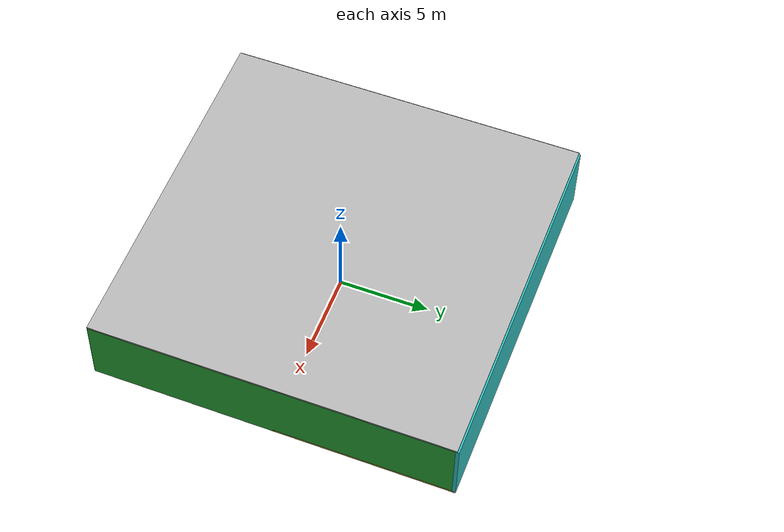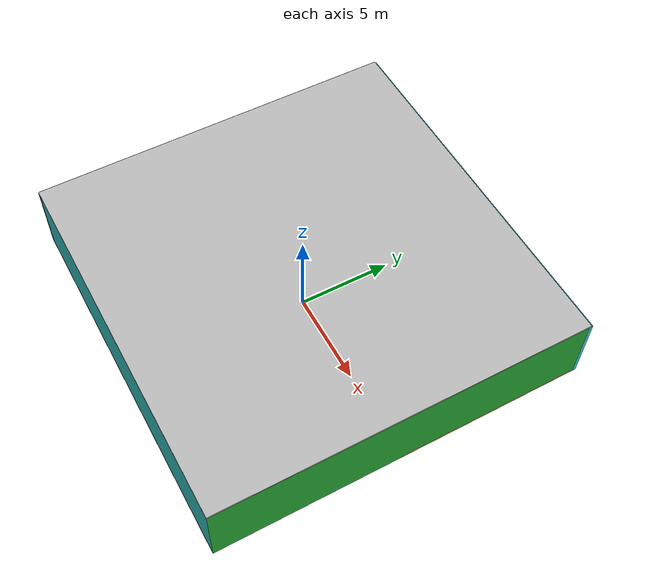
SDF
<sdf version="1.4">
 <world name="default">
  <physics type="ode">
   <max_step_size>0.001</max_step_size>
   <real_time_factor>1</real_time_factor>
   <real_time_update_rate>1000</real_time_update_rate>
   <gravity>0 0 -9.8</gravity>
  </physics>
  <scene><ambient>0.4 0.4 0.4 1</ambient><background>0.7 0.7 0.7 1</background><shadows>1</shadows></scene>
  <model name="Surrounding">
   <static>1</static>
   <link name="Ceiling">
    <collision name="Ceiling_Collision"><geometry><box><size>20 20 0.1</size></box></geometry></collision>
    <visual name="Ceiling_Visual">
     <geometry><box><size>20 20 0.1</size></box></geometry>
     <material>
      <script><uri>file://media/materials/scripts/gazebo.material</uri><name>Gazebo/LightOff</name></script>
     </material>
    </visual>
    <pose>0 0 4.05 0 0 0</pose>
   </link>
   <link name="Wall_South">
    <collision name="Wall_South_Collision">
     <geometry><box><size>20 0 4</size></box></geometry>
     <pose>0 0 2 0 -0 0</pose>
    </collision>
    <visual name="Wall_South_Visual">
     <pose>0 0 2 0 -0 0</pose>
     <geometry><box><size>20 0 4</size></box></geometry>
     <material>
      <script>
       <uri>file://media/materials/scripts/gazebo.material</uri>
       <name>Gazebo/TurquoiseGlowOutline</name>
      </script>
     </material>
    </visual>
    <velocity_decay><linear>0</linear><angular>0</angular></velocity_decay>
    <pose>0 -10 0 0 -0 0</pose>
   </link>
   <link name="Wall_East">
    <collision name="Wall_21_Collision">
     <geometry><box><size>20 0 4</size></box></geometry>
     <pose>0 0 2 0 -0 0</pose>
    </collision>
    <visual name="Wall_21_Visual">
     <pose>0 0 2 0 -0 0</pose>
     <geometry><box><size>20 0 4</size></box></geometry>
     <material>
      <script><uri>file://media/materials/scripts/gazebo.material</uri><name>Gazebo/Green</name></script>
     </material>
    </visual>
    <velocity_decay><linear>0</linear><angular>0</angular></velocity_decay>
    <pose>10 0 0 0 -0 1.5708</pose>
   </link>
   <link name="Wall_North">
    <collision name="Wall_22_Collision">
     <geometry><box><size>20 0.2 4</size></box></geometry>
     <pose>0 0 2 0 -0 0</pose>
    </collision>
    <visual name="Wall_22_Visual">
     <pose>0 0 2 0 -0 0</pose>
     <geometry><box><size>20 0.2 4</size></box></geometry>
     <material>
      <script>
       <uri>file://media/materials/scripts/gazebo.material</uri>
       <name>Gazebo/TurquoiseGlowOutline</name>
      </script>
     </material>
    </visual>
    <velocity_decay><linear>0</linear><angular>0</angular></velocity_decay>
    <pose>0 10 0 0 -0 0</pose>
   </link>
   <link name="Wall_West">
    <collision name="Wall_23_Collision">
     <geometry><box><size>20 0.2 4</size></box></geometry>
     <pose>0 0 2 0 -0 0</pose>
    </collision>
    <visual name="Wall_23_Visual">
     <pose>0 0 2 0 -0 0</pose>
     <geometry><box><size>20 0.2 4</size></box></geometry>
     <material>
      <script><uri>file://media/materials/scripts/gazebo.material</uri><name>Gazebo/Grey</name></script>
     </material>
    </visual>
    <velocity_decay><linear>0</linear><angular>0</angular></velocity_decay>
    <pose>-10 0 0 0 0 -1.5708</pose>
   </link>
   <link name="Ground_link">
    <collision name="collision">
     <pose>0 0 .05 0 -0 0</pose>
     <geometry><box><size>20 20 0.1</size></box></geometry>
    </collision>
    <visual name="visual">
     <pose>0 0 .05 0 -0 0</pose>
     <geometry><box><size>20 20 0.1</size></box></geometry>
     <material>
      <script><uri>file://media/materials/scripts/gazebo.material</uri><name>Gazebo/Gold</name></script>
     </material>
    </visual>
   </link>
   <static>1</static>
  </model>
  <spherical_coordinates>
   <surface_model>EARTH_WGS84</surface_model>
   <latitude_deg>0</latitude_deg>
   <longitude_deg>0</longitude_deg>
   <elevation>0</elevation>
   <heading_deg>0</heading_deg>
  </spherical_coordinates>
  <light name="lightball_0" type="diffuse">
   <diffuse>0.8 0.8 0.8 1</diffuse>
   <specular>0.2 0.2 0.2 1</specular>
   <attenuation>
    <range>100</range>
    <constant>0.7</constant>
    <linear>0.01</linear>
    <quadratic>0.001</quadratic>
   </attenuation>
   <direction>-0.5 0.1 -0.9</direction>
   <pose>-1.05128313901 1.6037938966 1.07599085646 0 0 0</pose>
  </light>
  <light name="lightball_1" type="diffuse">
   <diffuse>0.8 0.8 0.8 1</diffuse>
   <specular>0.2 0.2 0.2 1</specular>
   <attenuation>
    <range>100</range>
    <constant>0.7</constant>
    <linear>0.01</linear>
    <quadratic>0.001</quadratic>
   </attenuation>
   <direction>-0.5 0.1 -0.9</direction>
   <pose>-3.42431056717 0.304134575435 3.76235662942 0 0 0</pose>
  </light>
  <light name="lightball_2" type="diffuse">
   <diffuse>0.8 0.8 0.8 1</diffuse>
   <specular>0.2 0.2 0.2 1</specular>
   <attenuation>
    <range>100</range>
    <constant>0.7</constant>
    <linear>0.01</linear>
    <quadratic>0.001</quadratic>
   </attenuation>
   <direction>-0.5 0.1 -0.9</direction>
   <pose>-3.62822105272 9.52395671686 1.11150118457 0 0 0</pose>
  </light>
  <light name="lightball_3" type="diffuse">
   <diffuse>0.8 0.8 0.8 1</diffuse>
   <specular>0.2 0.2 0.2 1</specular>
   <attenuation>
    <range>100</range>
    <constant>0.7</constant>
    <linear>0.01</linear>
    <quadratic>0.001</quadratic>
   </attenuation>
   <direction>-0.5 0.1 -0.9</direction>
   <pose>4.73120900022 -7.75505029865 1.01080323303 0 0 0</pose>
  </light>
  <light name="lightball_4" type="diffuse">
   <diffuse>0.8 0.8 0.8 1</diffuse>
   <specular>0.2 0.2 0.2 1</specular>
   <attenuation>
    <range>100</range>
    <constant>0.7</constant>
    <linear>0.01</linear>
    <quadratic>0.001</quadratic>
   </attenuation>
   <direction>-0.5 0.1 -0.9</direction>
   <pose>-9.15195936407 -5.8252480757 0.508055358529 0 0 0</pose>
  </light>
  <light name="lightball_5" type="diffuse">
   <diffuse>0.8 0.8 0.8 1</diffuse>
   <specular>0.2 0.2 0.2 1</specular>
   <attenuation>
    <range>100</range>
    <constant>0.7</constant>
    <linear>0.01</linear>
    <quadratic>0.001</quadratic>
   </attenuation>
   <direction>-0.5 0.1 -0.9</direction>
   <pose>1.41569541648 6.30044885601 1.14395612542 0 0 0</pose>
  </light>
  <light name="lightball_6" type="diffuse">
   <diffuse>0.8 0.8 0.8 1</diffuse>
   <specular>0.2 0.2 0.2 1</specular>
   <attenuation>
    <range>100</range>
    <constant>0.7</constant>
    <linear>0.01</linear>
    <quadratic>0.001</quadratic>
   </attenuation>
   <direction>-0.5 0.1 -0.9</direction>
   <pose>1.12681076539 9.63758750646 2.95349855205 0 0 0</pose>
  </light>
  <light name="lightball_7" type="diffuse">
   <diffuse>0.8 0.8 0.8 1</diffuse>
   <specular>0.2 0.2 0.2 1</specular>
   <attenuation>
    <range>100</range>
    <constant>0.7</constant>
    <linear>0.01</linear>
    <quadratic>0.001</quadratic>
   </attenuation>
   <direction>-0.5 0.1 -0.9</direction>
   <pose>4.22111738609 7.90143584301 1.08861314254 0 0 0</pose>
  </light>
  <light name="lightball_8" type="diffuse">
   <diffuse>0.8 0.8 0.8 1</diffuse>
   <specular>0.2 0.2 0.2 1</specular>
   <attenuation>
    <range>100</range>
    <constant>0.7</constant>
    <linear>0.01</linear>
    <quadratic>0.001</quadratic>
   </attenuation>
   <direction>-0.5 0.1 -0.9</direction>
   <pose>-3.03140042843 -3.13801785634 1.79774489421 0 0 0</pose>
  </light>
  <light name="lightball_9" type="diffuse">
   <diffuse>0.8 0.8 0.8 1</diffuse>
   <specular>0.2 0.2 0.2 1</specular>
   <attenuation>
    <range>100</range>
    <constant>0.7</constant>
    <linear>0.01</linear>
    <quadratic>0.001</quadratic>
   </attenuation>
   <direction>-0.5 0.1 -0.9</direction>
   <pose>6.77745180873 0.382031170551 1.86865197626 0 0 0</pose>
  </light>
  <light name="lightball_10" type="diffuse">
   <diffuse>0.8 0.8 0.8 1</diffuse>
   <specular>0.2 0.2 0.2 1</specular>
   <attenuation>
    <range>100</range>
    <constant>0.7</constant>
    <linear>0.01</linear>
    <quadratic>0.001</quadratic>
   </attenuation>
   <direction>-0.5 0.1 -0.9</direction>
   <pose>-7.86914842906 -8.27368192322 3.74178640621 0 0 0</pose>
  </light>
  <light name="lightball_11" type="diffuse">
   <diffuse>0.8 0.8 0.8 1</diffuse>
   <specular>0.2 0.2 0.2 1</specular>
   <attenuation>
    <range>100</range>
    <constant>0.7</constant>
    <linear>0.01</linear>
    <quadratic>0.001</quadratic>
   </attenuation>
   <direction>-0.5 0.1 -0.9</direction>
   <pose>4.89712720837 -8.49891025314 3.84635965869 0 0 0</pose>
  </light>
  <light name="lightball_12" type="diffuse">
   <diffuse>0.8 0.8 0.8 1</diffuse>
   <specular>0.2 0.2 0.2 1</specular>
   <attenuation>
    <range>100</range>
    <constant>0.7</constant>
    <linear>0.01</linear>
    <quadratic>0.001</quadratic>
   </attenuation>
   <direction>-0.5 0.1 -0.9</direction>
   <pose>-6.61734017633 1.27639343267 2.31988656204 0 0 0</pose>
  </light>
  <include><uri>model://cabinet</uri><pose>-8.37661439896 -3.77662885819 0 0 0 0.104631338441</pose></include>
  <include><uri>model://cabinet</uri><pose>-5.49606974823 -8.48735397687 0 0 0 1.53104144001</pose></include>
  <include>
   <uri>model://robocup_3Dsim_goal</uri>
   <pose>-1.54143307867 -4.91389238394 0 0 0 2.75118887526</pose>
  </include>
  <include>
   <uri>model://textured_shapes</uri>
   <pose>1.91401526039 -4.2694665796 0 0 0 0.884622707517</pose>
  </include>
  <include><uri>model://table</uri><pose>1.52974508282 5.64082518996 0 0 0 1.97103778774</pose></include>
  <include>
   <uri>model://textured_shapes</uri>
   <pose>5.05778229067 1.13558539967 0 0 0 2.96464940517</pose>
  </include>
  <include>
   <uri>model://robocup_3Dsim_goal</uri>
   <pose>8.46311780541 -7.26865061551 0 0 0 0.233506574829</pose>
  </include>
 </world>
</sdf>

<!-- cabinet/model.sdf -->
<sdf version="1.5">
  <model name="cabinet">
    <static>true</static>
    <link name="cabinet_bottom_plate">
      <inertial>
        <pose>0 0 -1 0 0 0</pose>
        <inertia>
          <ixx>2.050000</ixx>
          <ixy>0</ixy>
          <ixz>0</ixz>
          <iyy>2.050000</iyy>
          <iyz>0</iyz>
          <izz>2.050000</izz>
        </inertia>
        <mass>25.000000</mass>
      </inertial>
      <collision name="cabinet_bottom_plate_geom">
        <pose>0 0 0.010000 0 0 0</pose>
        <geometry>
          <box>
            <size>0.450000 0.450000 0.020000</size>
          </box>
        </geometry>
      </collision>
      <visual name="cabinet_bottom_plate_geom_visual">
        <pose>0 0 0.010000 0 0 0</pose>
        <geometry>
          <box>
            <size>0.450000 0.450000 0.020000</size>
          </box>
        </geometry>
        <material>
          <script>
            <uri>model://media/materials/scripts/gazebo.material</uri>
            <name>Gazebo/Wood</name>
          </script>
        </material>
      </visual>
      <collision name="cabinet_bottom_plate_geom_cabinet_back_plate">
        <pose>0.235000 0 0.510000 0 0 0</pose>
        <geometry>
          <box>
            <size>0.020000 0.450000 1.020000</size>
          </box>
        </geometry>
      </collision>
      <visual name="cabinet_bottom_plate_geom_cabinet_back_plate_visual">
        <pose>0.235000 0 0.510000 0 0 0</pose>
        <geometry>
          <box>
            <size>0.020000 0.450000 1.020000</size>
          </box>
        </geometry>
        <material>
          <script>
            <uri>model://media/materials/scripts/gazebo.material</uri>
            <name>Gazebo/Wood</name>
          </script>
        </material>
      </visual>
      <collision name="cabinet_bottom_plate_geom_cabinet_left_plate">
        <pose>0 0.235000 0.510000 0 0 0</pose>
        <geometry>
          <box>
            <size>0.450000 0.020000 1.020000</size>
          </box>
        </geometry>
      </collision>
      <visual name="cabinet_bottom_plate_geom_cabinet_left_plate_visual">
        <pose>0 0.235000 0.510000 0 0 0</pose>
        <geometry>
          <box>
            <size>0.450000 0.020000 1.020000</size>
          </box>
        </geometry>
        <material>
          <script>
            <uri>model://media/materials/scripts/gazebo.material</uri>
            <name>Gazebo/Wood</name>
          </script>
        </material>
      </visual>
      <collision name="cabinet_bottom_plate_geom_cabinet_middle_plate">
        <pose>0 0 0.510000 0 0 0</pose>
        <geometry>
          <box>
            <size>0.450000 0.450000 0.020000</size>
          </box>
        </geometry>
      </collision>
      <visual name="cabinet_bottom_plate_geom_cabinet_middle_plate_visual">
        <pose>0 0 0.510000 0 0 0</pose>
        <geometry>
          <box>
            <size>0.450000 0.450000 0.020000</size>
          </box>
        </geometry>
        <material>
          <script>
            <uri>model://media/materials/scripts/gazebo.material</uri>
            <name>Gazebo/Wood</name>
          </script>
        </material>
      </visual>
      <collision name="cabinet_bottom_plate_geom_cabinet_right_plate">
        <pose>0 -0.235000 0.510000 0 0 0</pose>
        <geometry>
          <box>
            <size>0.450000 0.020000 1.020000</size>
          </box>
        </geometry>
      </collision>
      <visual name="cabinet_bottom_plate_geom_cabinet_right_plate_visual">
        <pose>0 -0.235000 0.510000 0 0 0</pose>
        <geometry>
          <box>
            <size>0.450000 0.020000 1.020000</size>
          </box>
        </geometry>
        <material>
          <script>
            <uri>model://media/materials/scripts/gazebo.material</uri>
            <name>Gazebo/Wood</name>
          </script>
        </material>
      </visual>
      <collision name="cabinet_bottom_plate_geom_cabinet_top_plate">
        <pose>0 0 1.010000 0 0 0</pose>
        <geometry>
          <box>
            <size>0.450000 0.450000 0.020000</size>
          </box>
        </geometry>
      </collision>
      <visual name="cabinet_bottom_plate_geom_cabinet_top_plate_visual">
        <pose>0 0 1.010000 0 0 0</pose>
        <geometry>
          <box>
            <size>0.450000 0.450000 0.020000</size>
          </box>
        </geometry>
        <material>
          <script>
            <uri>model://media/materials/scripts/gazebo.material</uri>
            <name>Gazebo/Wood</name>
          </script>
        </material>
      </visual>
    </link>
  </model>
</sdf>

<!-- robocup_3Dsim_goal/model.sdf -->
<sdf version="1.5">
  <model name="robocup_3d_goal">
    <static>true</static>
    <link name="left_post">
      <pose>0 1.05 0.45 0 0 0</pose>
      <collision name="collision">
        <geometry>
          <cylinder>
            <radius>0.05</radius>
            <length>0.9</length>
          </cylinder>
        </geometry>
      </collision>
      <visual name="visual">
        <geometry>
          <cylinder>
            <radius>0.05</radius>
            <length>0.9</length>
          </cylinder>
        </geometry>
        <material>
          <script>
            <uri>file://media/materials/scripts/gazebo.material</uri>
            <name>Gazebo/ZincYellow</name>
          </script>
        </material>
      </visual>
    </link>
    <link name="left_support_horiz_lower">
      <pose>0.30 1.05 0.01 0 0 0</pose>
      <collision name="collision">
        <geometry>
          <box>
            <size>0.50 0.02 0.02</size>
          </box>
        </geometry>
      </collision>
      <visual name="visual">
        <geometry>
          <box>
            <size>0.50 0.02 0.02</size>
          </box>
        </geometry>
        <material>
          <script>
            <uri>file://media/materials/scripts/gazebo.material</uri>
            <name>Gazebo/White</name>
          </script>
        </material>
      </visual>
    </link>
    <link name="left_support_horiz_upper">
      <pose>0.30 1.05 0.79 0 0 0</pose>
      <collision name="collision">
        <geometry>
          <box>
            <size>0.50 0.02 0.02</size>
          </box>
        </geometry>
      </collision>
      <visual name="visual">
        <geometry>
          <box>
            <size>0.50 0.02 0.02</size>
          </box>
        </geometry>
        <material>
          <script>
            <uri>file://media/materials/scripts/gazebo.material</uri>
            <name>Gazebo/White</name>
          </script>
        </material>
      </visual>
    </link>
    <link name="left_support_vertical">
      <pose>0.56 1.05 0.4 0 1.5708 0</pose>
      <collision name="collision">
        <geometry>
          <box>
            <size>0.80 0.02 0.02</size>
          </box>
        </geometry>
      </collision>
      <visual name="visual">
        <geometry>
          <box>
            <size>0.80 0.02 0.02</size>
          </box>
        </geometry>
        <material>
          <script>
            <uri>file://media/materials/scripts/gazebo.material</uri>
            <name>Gazebo/White</name>
          </script>
        </material>
      </visual>
    </link>
    <link name="right_support_horiz_lower">
      <pose>0.30 -1.05 0.01 0 0 0</pose>
      <collision name="collision">
        <geometry>
          <box>
            <size>0.50 0.02 0.02</size>
          </box>
        </geometry>
      </collision>
      <visual name="visual">
        <geometry>
          <box>
            <size>0.50 0.02 0.02</size>
          </box>
        </geometry>
        <material>
          <script>
            <uri>file://media/materials/scripts/gazebo.material</uri>
            <name>Gazebo/White</name>
          </script>
        </material>
      </visual>
    </link>
    <link name="right_support_horiz_upper">
      <pose>0.30 -1.05 0.79 0 0 0</pose>
      <collision name="collision">
        <geometry>
          <box>
            <size>0.50 0.02 0.02</size>
          </box>
        </geometry>
      </collision>
      <visual name="visual">
        <geometry>
          <box>
            <size>0.50 0.02 0.02</size>
          </box>
        </geometry>
        <material>
          <script>
            <uri>file://media/materials/scripts/gazebo.material</uri>
            <name>Gazebo/White</name>
          </script>
        </material>
      </visual>
    </link>
    <link name="right_support_vertical">
      <pose>0.56 -1.05 0.4 0 1.5708 0</pose>
      <collision name="collision">
        <geometry>
          <box>
            <size>0.80 0.02 0.02</size>
          </box>
        </geometry>
      </collision>
      <visual name="visual">
        <geometry>
          <box>
            <size>0.80 0.02 0.02</size>
          </box>
        </geometry>
        <material>
          <script>
            <uri>file://media/materials/scripts/gazebo.material</uri>
            <name>Gazebo/White</name>
          </script>
        </material>
      </visual>
    </link>
    <link name="center_support_horiz_lower">
      <pose>0.56 0 0.01 0 1.5708 0</pose>
      <collision name="collision">
        <geometry>
          <box>
            <size>0.02 2.08 0.02</size>
          </box>
        </geometry>
      </collision>
      <visual name="visual">
        <geometry>
          <box>
            <size>0.02 2.08 0.02</size>
          </box>
        </geometry>
        <material>
          <script>
            <uri>file://media/materials/scripts/gazebo.material</uri>
            <name>Gazebo/White</name>
          </script>
        </material>
      </visual>
    </link>
    <link name="center_support_horiz_upper">
      <pose>0.56 0 0.79 0 1.5708 0</pose>
      <collision name="collision">
        <geometry>
          <box>
            <size>0.02 2.08 0.02</size>
          </box>
        </geometry>
      </collision>
      <visual name="visual">
        <geometry>
          <box>
            <size>0.02 2.08 0.02</size>
          </box>
        </geometry>
        <material>
          <script>
            <uri>file://media/materials/scripts/gazebo.material</uri>
            <name>Gazebo/White</name>
          </script>
        </material>
      </visual>
    </link>
    <link name="right_post">
      <pose>0 -1.05 0.45 0 0 0</pose>
      <collision name="collision">
        <geometry>
          <cylinder>
            <radius>0.05</radius>
            <length>0.9</length>
          </cylinder>
        </geometry>
      </collision>
      <visual name="visual">
        <geometry>
          <cylinder>
            <radius>0.05</radius>
            <length>0.9</length>
          </cylinder>
        </geometry>
        <material>
          <script>
            <uri>file://media/materials/scripts/gazebo.material</uri>
            <name>Gazebo/ZincYellow</name>
          </script>
        </material>
      </visual>
    </link>
    <link name="crossbar">
      <pose>0 0 0.85 1.57 1.57 0</pose>
      <collision name="collision">
        <geometry>
          <cylinder>
            <radius>0.05</radius>
            <length>2.0</length>
          </cylinder>
        </geometry>
      </collision>
      <visual name="visual">
        <geometry>
          <cylinder>
            <radius>0.05</radius>
            <length>2.0</length>
          </cylinder>
        </geometry>
        <material>
          <script>
            <uri>file://media/materials/scripts/gazebo.material</uri>
            <name>Gazebo/ZincYellow</name>
          </script>
        </material>
      </visual>
    </link>
    <link name="center_net">
      <pose>0.56 0 0.40 0 0 0</pose>
      <collision name="collision">
        <geometry>
          <box>
            <size>0.01 2.1 0.80</size>
          </box>
        </geometry>
      </collision>
      <visual name="visual">
        <geometry>
          <box>
            <size>0.01 2.1 0.80</size>
          </box>
        </geometry>
        <material>
          <script>
            <uri>model://../model_source/models/robocup09_spl_field/materials/scripts/</uri>
            <uri>model://../model_source/models/robocup09_spl_field/materials/textures/</uri>
            <name>RoboCup/Net</name>
          </script>
        </material>
      </visual>
    </link>
    <link name="left_net">
      <pose>0.30 1.05 0.40 0 0 0</pose>
      <collision name="collision">
        <geometry>
          <box>
            <size>0.50 0.01 0.76</size>
          </box>
        </geometry>
      </collision>
      <visual name="visual">
        <geometry>
          <box>
            <size>0.50 0.01 0.76</size>
          </box>
        </geometry>
        <material>
          <script>
            <uri>model://../model_source/models/robocup09_spl_field/materials/scripts/</uri>
            <uri>model://../model_source/models/robocup09_spl_field/materials/textures/</uri>
            <name>RoboCup/Net</name>
          </script>
        </material>
      </visual>
    </link>
    <link name="right_net">
      <pose>0.30 -1.05 0.40 0 0 0</pose>
      <collision name="collision">
        <geometry>
          <box>
            <size>0.50 0.01 0.76</size>
          </box>
        </geometry>
      </collision>
      <visual name="visual">
        <geometry>
          <box>
            <size>0.50 0.01 0.76</size>
          </box>
        </geometry>
        <material>
          <script>
            <uri>model://../model_source/models/robocup09_spl_field/materials/scripts/</uri>
            <uri>model://../model_source/models/robocup09_spl_field/materials/textures/</uri>
            <name>RoboCup/Net</name>
          </script>
        </material>
      </visual>
    </link>
  </model>
</sdf>

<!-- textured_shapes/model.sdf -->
<sdf version="1.6">
  <model name="textured_shapes">
    <pose>0 0 0.5 0 0 0</pose>
    <link name="box">
      <pose>0 -1.5 0 0 0 0</pose>
      <collision name="collision">
        <geometry>
          <box>
            <size>1 1 1</size>
          </box>
        </geometry>
      </collision>
      <visual name="visual">
        <geometry>
          <box>
            <size>1 1 1</size>
          </box>
        </geometry>
        <material>
          <script>
            <uri>model://../model_source/models/textured_shapes/materials/scripts</uri>
            <uri>model://../model_source/models/textured_shapes/materials/textures</uri>
            <name>TexturedShape/Squares</name>
          </script>
        </material>
      </visual>
    </link>
    <link name="sphere">
      <collision name="collision">
        <geometry>
          <sphere>
            <radius>0.5</radius>
          </sphere>
        </geometry>
      </collision>
      <visual name="visual">
        <geometry>
          <sphere>
            <radius>0.5</radius>
          </sphere>
        </geometry>
        <material>
          <script>
            <uri>model://../model_source/models/textured_shapes/materials/scripts</uri>
            <uri>model://../model_source/models/textured_shapes/materials/textures</uri>
            <name>TexturedShape/Squares</name>
          </script>
        </material>
      </visual>
    </link>
    <link name="cylinder">
      <pose>0 1.5 0 0 0 0</pose>
      <collision name="collision">
        <geometry>
          <cylinder>
            <radius>0.5</radius>
            <length>1</length>
          </cylinder>
        </geometry>
      </collision>
      <visual name="visual">
        <geometry>
          <cylinder>
            <radius>0.5</radius>
            <length>1</length>
          </cylinder>
        </geometry>
        <material>
          <script>
            <uri>model://../model_source/models/textured_shapes/materials/scripts</uri>
            <uri>model://../model_source/models/textured_shapes/materials/textures</uri>
            <name>TexturedShape/Squares</name>
          </script>
        </material>
      </visual>
    </link>
  </model>
</sdf>

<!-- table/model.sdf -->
<sdf version="1.5">
  <model name="table">
    <static>true</static>
    <link name="link">
      <collision name="surface">
        <pose>0 0 1.0 0 0 0</pose>
        <geometry>
          <box>
            <size>1.5 0.8 0.03</size>
          </box>
        </geometry>
        <surface>
          <friction>
            <ode>
              <mu>0.6</mu>
              <mu2>0.6</mu2>
            </ode>
          </friction>
        </surface>
      </collision>
      <visual name="visual1">
        <pose>0 0 1.0 0 0 0</pose>
        <geometry>
          <box>
            <size>1.5 0.8 0.03</size>
          </box>
        </geometry>
        <material>
          <script>
            <uri>model://media/materials/scripts/gazebo.material</uri>
            <name>Gazebo/Wood</name>
          </script>
        </material>
      </visual>
      <collision name="front_left_leg">
        <pose>0.68 0.38 0.5 0 0 0</pose>
        <geometry>
          <cylinder>
            <radius>0.02</radius>
            <length>1.0</length>
          </cylinder>
        </geometry>
      </collision>
      <visual name="front_left_leg">
        <pose>0.68 0.38 0.5 0 0 0</pose>
        <geometry>
          <cylinder>
            <radius>0.02</radius>
            <length>1.0</length>
          </cylinder>
        </geometry>
        <material>
          <script>
            <uri>model://media/materials/scripts/gazebo.material</uri>
            <name>Gazebo/Grey</name>
          </script>
        </material>
      </visual>
      <collision name="front_right_leg">
        <pose>0.68 -0.38 0.5 0 0 0</pose>
        <geometry>
          <cylinder>
            <radius>0.02</radius>
            <length>1.0</length>
          </cylinder>
        </geometry>
      </collision>
      <visual name="front_right_leg">
        <pose>0.68 -0.38 0.5 0 0 0</pose>
        <geometry>
          <cylinder>
            <radius>0.02</radius>
            <length>1.0</length>
          </cylinder>
        </geometry>
        <material>
          <script>
            <uri>model://media/materials/scripts/gazebo.material</uri>
            <name>Gazebo/Grey</name>
          </script>
        </material>
      </visual>
      <collision name="back_right_leg">
        <pose>-0.68 -0.38 0.5 0 0 0</pose>
        <geometry>
          <cylinder>
            <radius>0.02</radius>
            <length>1.0</length>
          </cylinder>
        </geometry>
      </collision>
      <visual name="back_right_leg">
        <pose>-0.68 -0.38 0.5 0 0 0</pose>
        <geometry>
          <cylinder>
            <radius>0.02</radius>
            <length>1.0</length>
          </cylinder>
        </geometry>
        <material>
          <script>
            <uri>model://media/materials/scripts/gazebo.material</uri>
            <name>Gazebo/Grey</name>
          </script>
        </material>
      </visual>
      <collision name="back_left_leg">
        <pose>-0.68 0.38 0.5 0 0 0</pose>
        <geometry>
          <cylinder>
            <radius>0.02</radius>
            <length>1.0</length>
          </cylinder>
        </geometry>
      </collision>
      <visual name="back_left_leg">
        <pose>-0.68 0.38 0.5 0 0 0</pose>
        <geometry>
          <cylinder>
            <radius>0.02</radius>
            <length>1.0</length>
          </cylinder>
        </geometry>
        <material>
          <script>
            <uri>model://media/materials/scripts/gazebo.material</uri>
            <name>Gazebo/Grey</name>
          </script>
        </material>
      </visual>
    </link>
  </model>
</sdf>
